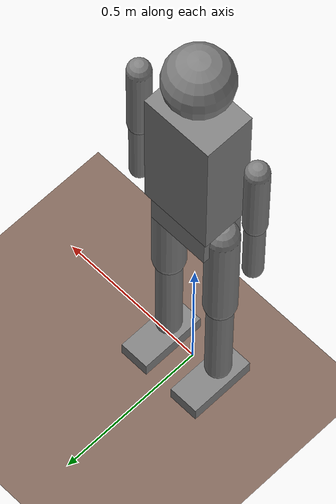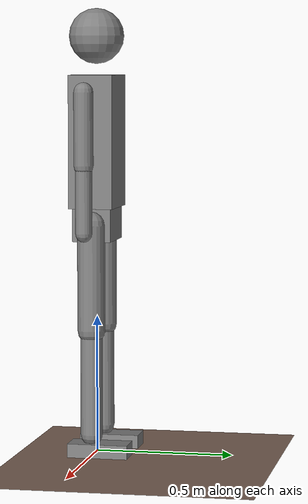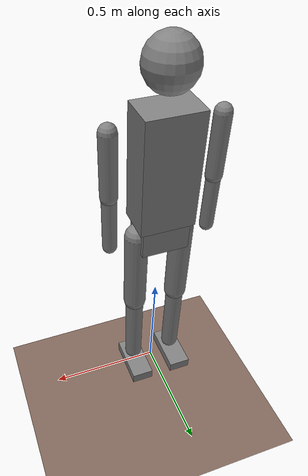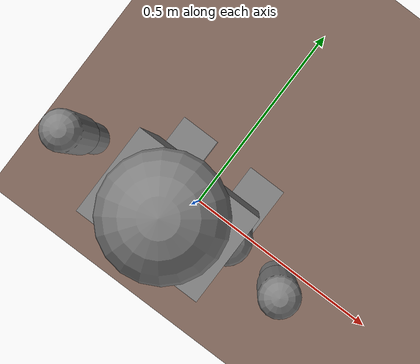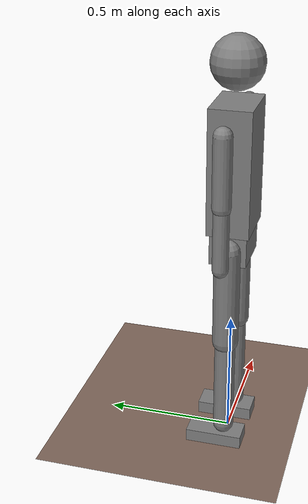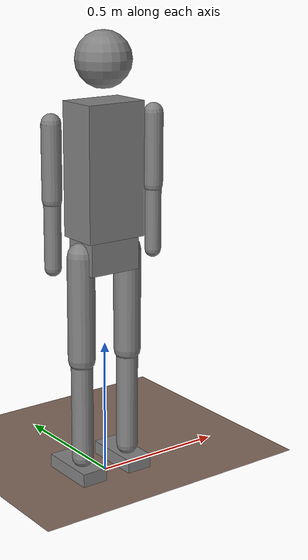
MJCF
<mujoco model="hab-bot-01-balance">
  <compiler angle="radian"/>
  <option gravity="0 0 -3.71" timestep="0.001"/>
  <default>
    <joint damping="1.2" armature="0.01"/>
    <geom friction="1.0 0.005 0.0001" density="900"/>
    <position kp="300" kv="18" forcerange="-150 150"/>
  </default>
  <worldbody>
    <geom name="floor" type="plane" size="20 20 0.1" rgba="0.5 0.4 0.35 1"/>
    <body name="pelvis" pos="0 0 0.84">
      <joint name="root_y" type="slide" axis="0 1 0" damping="0.02"/>
      <joint name="root_z" type="slide" axis="0 0 1" damping="0.02"/>
      <joint name="root_pitch" type="hinge" axis="1 0 0" damping="0.05"/>
      <geom name="pelvis_g" type="box" size="0.10 0.07 0.06" mass="6"
            contype="0" conaffinity="0"/>
      <geom name="torso_g" type="box" size="0.115 0.08 0.24" pos="0 0 0.30"
            mass="14" contype="0" conaffinity="0"/>
      <geom name="head_g" type="sphere" size="0.10" pos="0 0 0.68" mass="3.5"
            contype="0" conaffinity="0"/>

      <body name="thigh_L" pos="-0.10 0 0">
        <joint name="hip_L" type="hinge" axis="1 0 0" range="-1.2 1.2"/>
        <geom type="capsule" fromto="0 0 0  0 0 -0.38" size="0.05" mass="3.2"
              contype="0" conaffinity="0"/>
        <body name="shank_L" pos="0 0 -0.38">
          <joint name="knee_L" type="hinge" axis="1 0 0" range="-1.8 0.05"/>
          <geom type="capsule" fromto="0 0 0  0 0 -0.38" size="0.04" mass="2.2"
                contype="0" conaffinity="0"/>
          <body name="foot_L" pos="0 0 -0.38">
            <joint name="ank_L" type="hinge" axis="1 0 0" range="-0.8 0.8"/>
            <!-- flat sole: heel at y=-0.08, toe at y=+0.14 relative to ankle -->
            <geom name="foot_L_g" type="box" size="0.05 0.11 0.025"
                  pos="0 0.03 -0.055" mass="0.95"/>
          </body>
        </body>
      </body>
      <body name="thigh_R" pos="0.10 0 0">
        <joint name="hip_R" type="hinge" axis="1 0 0" range="-1.2 1.2"/>
        <geom type="capsule" fromto="0 0 0  0 0 -0.38" size="0.05" mass="3.2"
              contype="0" conaffinity="0"/>
        <body name="shank_R" pos="0 0 -0.38">
          <joint name="knee_R" type="hinge" axis="1 0 0" range="-1.8 0.05"/>
          <geom type="capsule" fromto="0 0 0  0 0 -0.38" size="0.04" mass="2.2"
                contype="0" conaffinity="0"/>
          <body name="foot_R" pos="0 0 -0.38">
            <joint name="ank_R" type="hinge" axis="1 0 0" range="-0.8 0.8"/>
            <geom name="foot_R_g" type="box" size="0.05 0.11 0.025"
                  pos="0 0.03 -0.055" mass="0.95"/>
          </body>
        </body>
      </body>

      <body name="uarm_L" pos="-0.215 0 0.48">
        <joint name="sh_L" type="hinge" axis="1 0 0" range="-1.5 1.5" damping="0.6"/>
        <geom type="capsule" fromto="0 0 0  0 0 -0.26" size="0.035" mass="1.1"
              contype="0" conaffinity="0"/>
        <body name="farm_L" pos="0 0 -0.26">
          <joint name="elb_L" type="hinge" axis="1 0 0" range="-0.1 2.0" damping="0.4"/>
          <geom type="capsule" fromto="0 0 0  0 0 -0.24" size="0.03" mass="0.7"
                contype="0" conaffinity="0"/>
        </body>
      </body>
      <body name="uarm_R" pos="0.215 0 0.48">
        <joint name="sh_R" type="hinge" axis="1 0 0" range="-1.5 1.5" damping="0.6"/>
        <geom type="capsule" fromto="0 0 0  0 0 -0.26" size="0.035" mass="1.1"
              contype="0" conaffinity="0"/>
        <body name="farm_R" pos="0 0 -0.26">
          <joint name="elb_R" type="hinge" axis="1 0 0" range="-0.1 2.0" damping="0.4"/>
          <geom type="capsule" fromto="0 0 0  0 0 -0.24" size="0.03" mass="0.7"
                contype="0" conaffinity="0"/>
        </body>
      </body>
    </body>
  </worldbody>

  <actuator>
    <position name="a_hip_L" joint="hip_L"/>
    <position name="a_hip_R" joint="hip_R"/>
    <position name="a_knee_L" joint="knee_L"/>
    <position name="a_knee_R" joint="knee_R"/>
    <motor name="a_ank_L" joint="ank_L" ctrlrange="-25 25"/>
    <motor name="a_ank_R" joint="ank_R" ctrlrange="-25 25"/>
    <position name="a_sh_L" joint="sh_L" kp="55" kv="5"/>
    <position name="a_sh_R" joint="sh_R" kp="55" kv="5"/>
    <position name="a_elb_L" joint="elb_L" kp="35" kv="3"/>
    <position name="a_elb_R" joint="elb_R" kp="35" kv="3"/>
  </actuator>
</mujoco>
